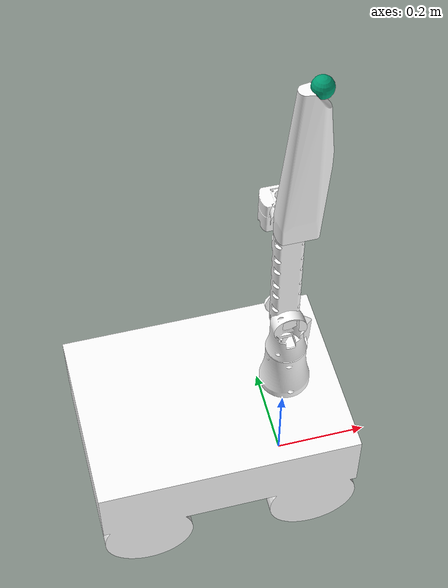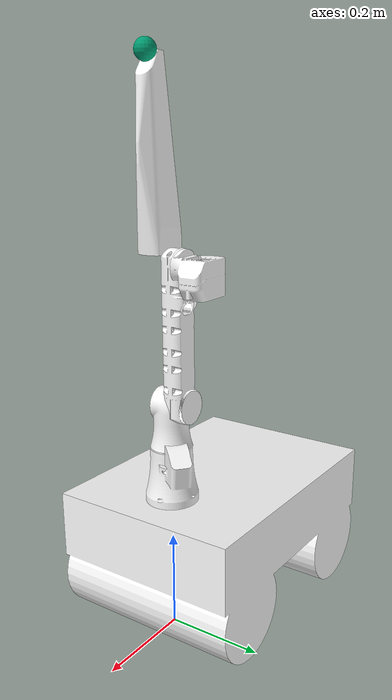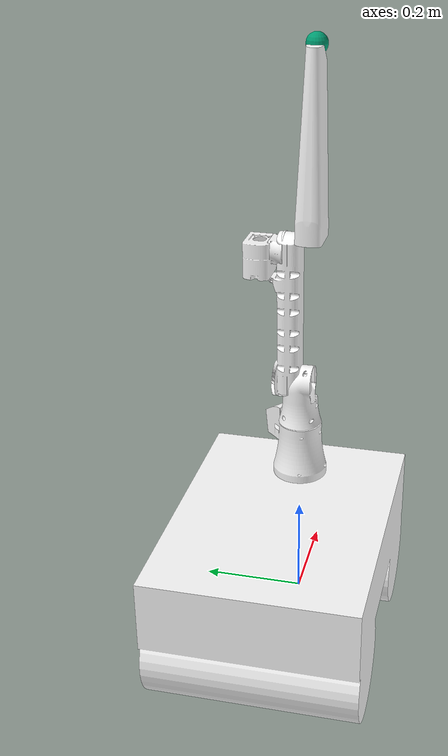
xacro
<?xml version="1.0" encoding="utf-8" ?>

<robot name="rigid_arm" xmlns:xacro="http://wiki.ros.org/xacro">

<xacro:property name="Base_Link_Orientation" value="0" />
<xacro:property name="Base_Link_Length" value="0.1143" />
<xacro:property name="Link_1_Length" value="0.089" />
<xacro:property name="Joint_2_Offset" value="0.0425" /> <!--Is this correct? -->
<xacro:property name="Link_2_Length" value="0.267" />
<xacro:property name="Joint_3_Offset" value="-0.0121" />
<xacro:property name="Joint_3_Offset_2" value="-0.0487" /> <!--Needs to line up. -->
<xacro:property name="Link_3_Length" value="0.0221" /> <!--Big Gap-->
<xacro:property name="Link_4_Length" value="0.3436" />
<xacro:property name="BR2_Offset" value="0.02775" />

    <link name="world" />
    <joint name="fixed" type="fixed">
        <parent link="world" />
        <child link="ts_body" />
    </joint>

<link name="ts_body">
        <visual>
            <origin rpy="0 0 0" xyz="0 0 0" />
            <geometry>
                <mesh filename="package://rigid_arm_description/meshes/ts_dummy.dae" scale="1 1 1" />
            </geometry>

        </visual>
        <collision>
            <origin rpy="0 0 0" xyz="0 0 0" />
            <geometry>
                <mesh filename="package://rigid_arm_description/meshes/ts_dummy_hull.dae" scale="1 1 1" />
            </geometry>
        </collision>

<inertial>
            <mass value="0.1" />
            <inertia ixx="0.03" ixy="0.0" ixz="0.0" iyy="0.03" iyz="0.0" izz="0.03" />
        </inertial>

    </link>
    <joint name="sub_joint" type="fixed">
        <origin rpy="0 0 0" xyz="0 0 0.285" />
        <parent link="ts_body" />
        <child link="base_link" />
    </joint>

    <link name="base_link">
        <visual>
            <origin rpy="0 0 2.44346" xyz="0 0 0" />
            <geometry>
                <mesh filename="package://rigid_arm_description/meshes/base_link.dae" scale="1 1 1" />
            </geometry>

        </visual>
        <collision>
            <origin rpy="0 0 2.44346" xyz="0 0 0" />
            <geometry>
                <mesh filename="package://rigid_arm_description/meshes/base_link_hull.dae" scale="1 1 1" />
            </geometry>
        </collision>

<inertial>
            <mass value="0.1" />
            <inertia ixx="0.03" ixy="0.0" ixz="0.0" iyy="0.03" iyz="0.0" izz="0.03" />
        </inertial>

    </link>
    <joint name="joint_01" type="revolute">
        <axis xyz="0 0 1" />
        <limit effort="1000.0" lower="-2.784" upper="2.784" velocity="0.5" />
        <origin rpy="0 0 0" xyz="0 0 ${Base_Link_Length}" />
        <parent link="base_link" />
        <child link="link1" />
    </joint>

    <link name="link1">
        <visual>
            <origin rpy="0 0 0" xyz="0 0 0" />
            <geometry>
                <mesh filename="package://rigid_arm_description/meshes/link_1.dae" scale="1 1 1" />
            </geometry>
        </visual>
        <collision>
            <origin rpy="0 0 0" xyz="0 0 0" />
            <geometry>
                <mesh filename="package://rigid_arm_description/meshes/link_1_hull.dae" scale="1 1 1" />
            </geometry>
        </collision>

<inertial>
            <mass value="0.1" />
            <inertia ixx="0.03" ixy="0.0" ixz="0.0" iyy="0.03" iyz="0.0" izz="0.03" />
        </inertial>

    </link>
    <joint name="joint_02" type="revolute">
        <axis xyz="0 -1 0" />
        <limit effort="1000.0" lower="-2.784" upper="2.784" velocity="0.5" />
        <origin rpy="0 0 0" xyz=".0 ${Joint_2_Offset} ${Link_1_Length} " />
        <parent link="link1" />
        <child link="link2" />
    </joint>
    <link name="link2">
        <visual>
            <origin rpy="0 0 0" xyz="0 0 0" />
            <geometry>
                <mesh filename="package://rigid_arm_description/meshes/link_2.dae" scale="1 1 1" />
            </geometry>
        </visual>
        <collision>
            <origin rpy="0 0 0" xyz="0 0 0" />
            <geometry>
                <mesh filename="package://rigid_arm_description/meshes/link_2_hull.dae" scale="1 1 1" />
            </geometry>
        </collision>

<inertial>
            <mass value="0.1" />
            <inertia ixx="0.03" ixy="0.0" ixz="0.0" iyy="0.03" iyz="0.0" izz="0.03" />
        </inertial>

    </link>
    <joint name="joint_03" type="revolute">
        <axis xyz="0 1 0" />
        <limit effort="1000.0" lower="-2.784" upper="2.784" velocity="0.5" />
        <origin rpy="0 0 0" xyz="0 ${Joint_3_Offset} ${Link_2_Length}" />
        <parent link="link2" />
        <child link="link3" />
    </joint>
    <link name="link3">
        <visual>
            <origin rpy="0 0 0" xyz="0 0 0" />
            <geometry>
                <mesh filename="package://rigid_arm_description/meshes/link_3.dae" scale="1 1 1" />
            </geometry>
        </visual>
        <collision>
            <origin rpy="0 0 0" xyz="0 0 0" />
            <geometry>
                <mesh filename="package://rigid_arm_description/meshes/link_3_hull.dae" scale="1 1 1" />
            </geometry>
        </collision>

<inertial>
            <mass value="0.1" />
            <inertia ixx="0.03" ixy="0.0" ixz="0.0" iyy="0.03" iyz="0.0" izz="0.03" />
        </inertial>

    </link>
    <joint name="joint_04" type="revolute">
        <axis xyz="0 0 1" />
        <limit effort="1000.0" lower="-1.57" upper="1.57" velocity="0.5" />
        <origin rpy="0 0 0" xyz="0 ${Joint_3_Offset_2} ${Link_3_Length}" />
        <parent link="link3" />
        <child link="link4" />
    </joint>
    <link name="link4">
        <visual>
            <origin rpy="0 0 0" xyz="0 0 0" />
            <geometry>
                <mesh filename="package://rigid_arm_description/meshes/link_4.dae" scale="1 1 1" />
            </geometry>
        </visual>
        <collision>
            <origin rpy="0 0 0" xyz="0 0 0" />
            <geometry>
                <mesh filename="package://rigid_arm_description/meshes/link_4_hull.dae" scale="1 1 1" />
            </geometry>
        </collision>

<inertial>
            <mass value="0.1" />
            <inertia ixx="0.03" ixy="0.0" ixz="0.0" iyy="0.03" iyz="0.0" izz="0.03" />
        </inertial>

    </link>

    <joint name="fake_joint_05" type="revolute">
        <axis xyz="0 1 0" />
        <limit effort="1000.0" lower="-3.14" upper="3.14" velocity="0.5" />
        <origin rpy="0 0 0" xyz="${BR2_Offset} 0 ${Link_4_Length}" />
        <parent link="link4" />
        <child link="fake_link1" />
    </joint>
    <link name="fake_link1">
         <visual>
            <origin rpy="0 0 0" xyz="0 0 0" />
            <geometry>
                <box size="0.01 0.01 0.01" />
            </geometry>
        </visual>
        <collision>
            <origin rpy="0 0 0" xyz="0 0 0" />
            <geometry>
                <box size="0.01 0.01 0.01" />
            </geometry>
        </collision>
<inertial>
            <mass value="0.1" />
            <inertia ixx="0.03" ixy="0.0" ixz="0.0" iyy="0.03" iyz="0.0" izz="0.03" />
        </inertial>
    </link>

    <joint name="fake_joint_06" type="revolute">
        <axis xyz="1 0 0" />
        <limit effort="1000.0" lower="-3.14" upper="3.14" velocity="0.5" />
        <origin rpy="0 0 0" xyz="0 0 0" />
        <parent link="fake_link1" />
        <child link="fake_link2" />
    </joint>
    <link name="fake_link2">
 <visual>
            <origin rpy="0 0 0" xyz="0 0 0" />
            <geometry>
                <box size="0.01 0.01 0.01" />
            </geometry>
        </visual>
        <collision>
            <origin rpy="0 0 0" xyz="0 0 0" />
            <geometry>
                <box size="0.01 0.01 0.01" />
            </geometry>
        </collision>
<inertial>
            <mass value="0.1" />
            <inertia ixx="0.03" ixy="0.0" ixz="0.0" iyy="0.03" iyz="0.0" izz="0.03" />
        </inertial>
    </link>

    <joint name="ee_fixed_joint" type="fixed">
        <origin rpy="0 0 0" xyz="0 0 .0" />
        <parent link="fake_link2" />
        <child link="ee_link" />
    </joint>
    <link name="ee_link">
        <visual>
            <origin rpy="0 0 0" xyz="0 0 0" />
            <geometry>
                <box size="0.01 0.01 0.01" />
            </geometry>
        </visual>
        <collision>
            <origin rpy="0 0 0" xyz="0 0 0" />
            <geometry>
                <box size="0.01 0.01 0.01" />
            </geometry>
        </collision>

<inertial>
            <mass value="0.1" />
            <inertia ixx="0.03" ixy="0.0" ixz="0.0" iyy="0.03" iyz="0.0" izz="0.03" />
        </inertial>

    </link>

    <joint name="hand_joint" type="revolute">
        <axis xyz="0 0 1" />
        <limit effort="100.0" lower="-3.14" upper="3.14" velocity="0.5" />
        <origin rpy="0 0 0" xyz="0 0 0" />
        <parent link="ee_link" />
        <child link="link5" />
    </joint>
    <link name="link5">
        <visual>
            <origin rpy="0 0 0" xyz="0 0 0" />
            <geometry>
                <sphere radius=".02" />
            </geometry>
		<gazebo>
		<material name="green">
            <color rgba="0 1 0 1"/>
      </material>
	  </gazebo>
        </visual>
        <collision>
            <origin rpy="0 0 0" xyz="0 0 0" />
            <geometry>
                <sphere radius=".02" />
            </geometry>
        </collision>

<inertial>
            <mass value="0.1" />
            <inertia ixx="0.03" ixy="0.0" ixz="0.0" iyy="0.03" iyz="0.0" izz="0.03" />
        </inertial>

    </link>

<transmission name="trans_joint_01">
        <type>transmission_interface/SimpleTransmission</type>
        <joint name="joint_01">
            <hardwareInterface>hardware_interface/PositionJointInterface</hardwareInterface>
        </joint>
        <actuator name="joint_01_motor">
            <hardwareInterface>hardware_interface/PositionJointInterface</hardwareInterface>
            <mechanicalReduction>1</mechanicalReduction>
        </actuator>
    </transmission>
    <transmission name="trans_joint_02">
        <type>transmission_interface/SimpleTransmission</type>
        <joint name="joint_02">
            <hardwareInterface>hardware_interface/PositionJointInterface</hardwareInterface>
        </joint>
        <actuator name="joint_02_motor">
            <hardwareInterface>hardware_interface/PositionJointInterface</hardwareInterface>
            <mechanicalReduction>1</mechanicalReduction>
        </actuator>
    </transmission>
    <transmission name="trans_joint_03">
        <type>transmission_interface/SimpleTransmission</type>
        <joint name="joint_03">
            <hardwareInterface>hardware_interface/PositionJointInterface</hardwareInterface>
        </joint>
        <actuator name="joint_03_motor">
            <hardwareInterface>hardware_interface/PositionJointInterface</hardwareInterface>
            <mechanicalReduction>1</mechanicalReduction>
        </actuator>
    </transmission>
    <transmission name="trans_joint_04">
        <type>transmission_interface/SimpleTransmission</type>
        <joint name="joint_04">
            <hardwareInterface>hardware_interface/PositionJointInterface</hardwareInterface>
        </joint>
        <actuator name="joint_04_motor">
            <hardwareInterface>hardware_interface/PositionJointInterface</hardwareInterface>
            <mechanicalReduction>1</mechanicalReduction>
        </actuator>
    </transmission>
    <transmission name="trans_fake_joint_05">
        <type>transmission_interface/SimpleTransmission</type>
        <joint name="fake_joint_05">
            <hardwareInterface>hardware_interface/PositionJointInterface</hardwareInterface>
        </joint>
        <actuator name="fake_joint_05_motor">
            <hardwareInterface>hardware_interface/PositionJointInterface</hardwareInterface>
            <mechanicalReduction>1</mechanicalReduction>
        </actuator>
    </transmission>
    <transmission name="trans_fake_joint_06">
        <type>transmission_interface/SimpleTransmission</type>
        <joint name="fake_joint_06">
            <hardwareInterface>hardware_interface/PositionJointInterface</hardwareInterface>
        </joint>
        <actuator name="fake_joint_06_motor">
            <hardwareInterface>hardware_interface/PositionJointInterface</hardwareInterface>
            <mechanicalReduction>1</mechanicalReduction>
        </actuator>
    </transmission>
    <gazebo>
        <plugin filename="libgazebo_ros_control.so" name="gazebo_ros_control">
            <robotNamespace>/</robotNamespace>
        </plugin>
    </gazebo>

</robot>
